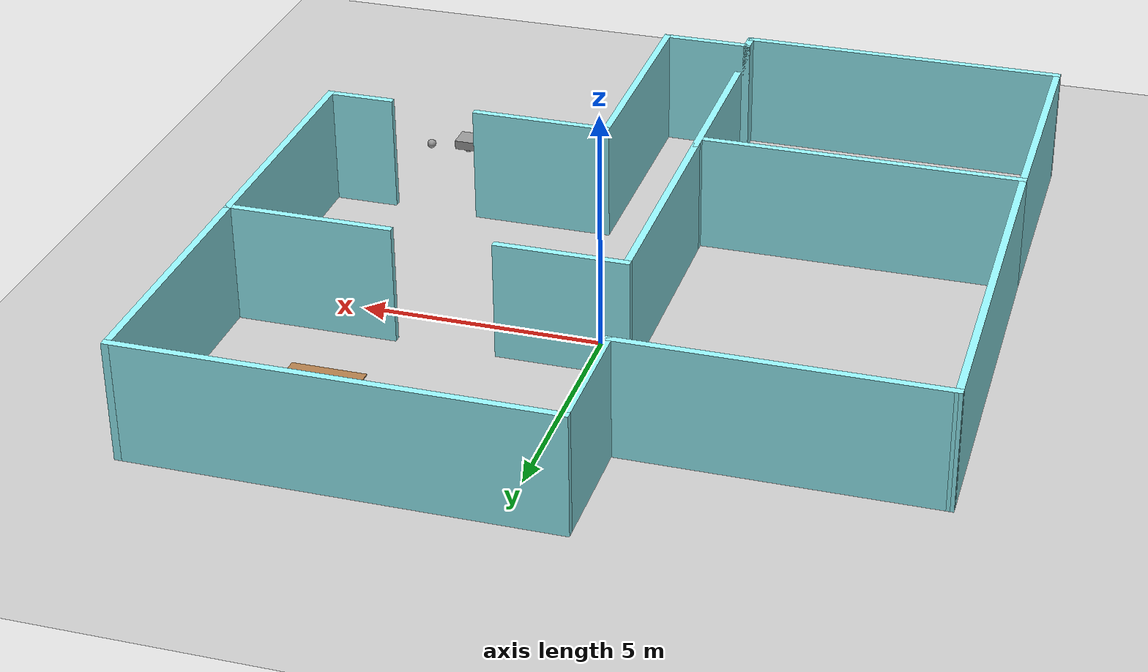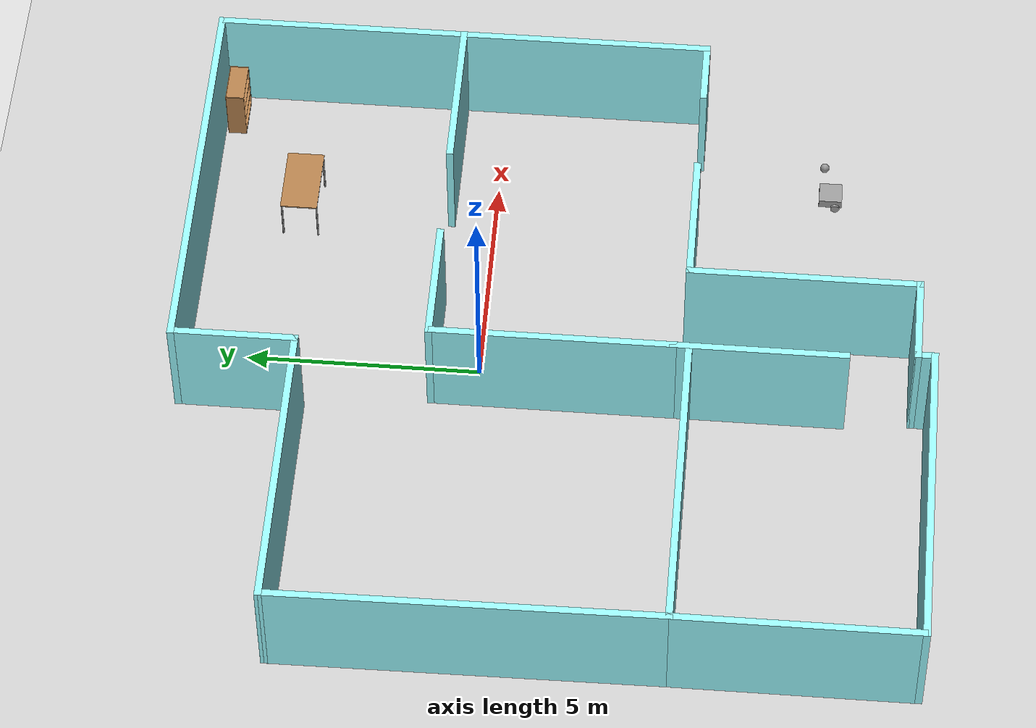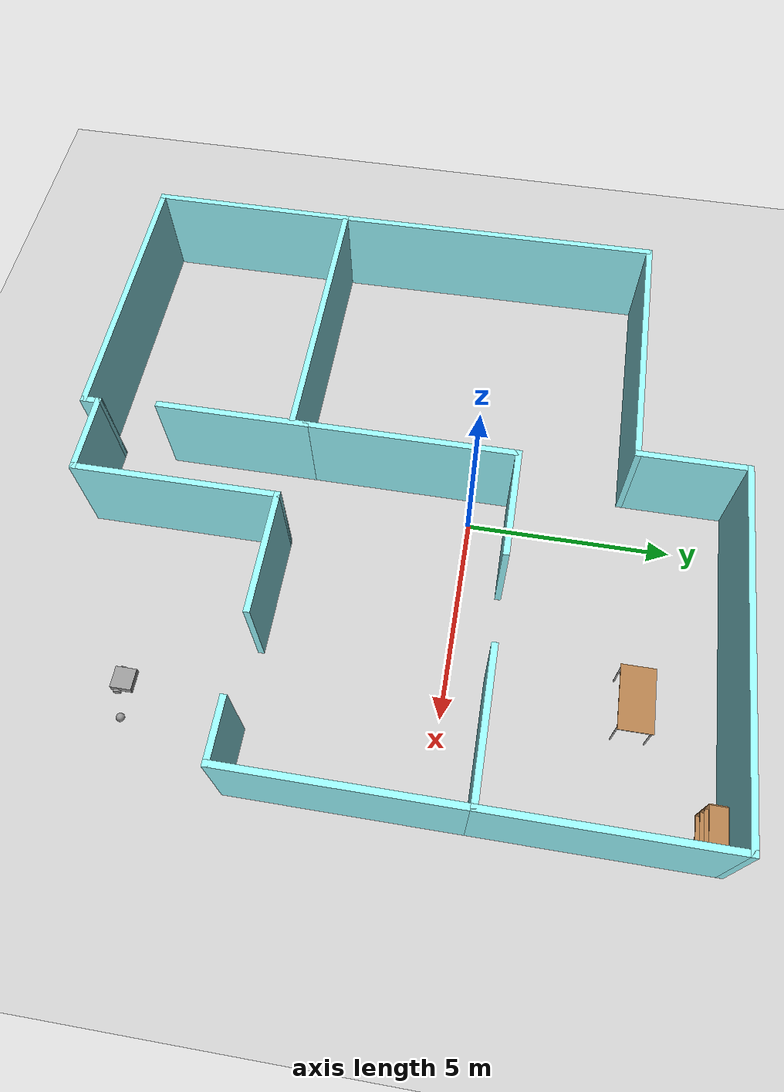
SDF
<sdf version="1.6">
 <world name="default">
  <plugin name="welcome" filename="libwelcome.so"/>
  <light name="sun" type="directional">
   <pose>0 0 10 0 -0 0</pose>
   <diffuse>0.8 0.8 0.8 1</diffuse>
   <specular>0.2 0.2 0.2 1</specular>
   <attenuation>
    <range>1000</range>
    <constant>0.9</constant>
    <linear>0.01</linear>
    <quadratic>0.001</quadratic>
   </attenuation>
   <direction>-0.5 0.1 -0.9</direction>
  </light>
  <model name="ground_plane">
   <static>1</static>
   <link name="link">
    <collision name="collision">
     <geometry><plane><normal>0 0 1</normal><size>100 100</size></plane></geometry>
     <surface>
      <contact><collide_bitmask>65535</collide_bitmask></contact>
      <friction><ode><mu>100</mu><mu2>50</mu2></ode></friction>
     </surface>
    </collision>
    <visual name="visual">
     <cast_shadows>0</cast_shadows>
     <geometry><plane><normal>0 0 1</normal><size>100 100</size></plane></geometry>
     <material>
      <script><uri>file://media/materials/scripts/gazebo.material</uri><name>Gazebo/Grey</name></script>
     </material>
    </visual>
   </link>
  </model>
  <gravity>0 0 -9.8</gravity>
  <magnetic_field>6e-06 2.3e-05 -4.2e-05</magnetic_field>
  <atmosphere type="adiabatic"/>
  <physics name="default_physics" default="0" type="ode">
   <max_step_size>0.001</max_step_size>
   <real_time_factor>1</real_time_factor>
   <real_time_update_rate>1000</real_time_update_rate>
  </physics>
  <scene><ambient>0.4 0.4 0.4 1</ambient><background>0.7 0.7 0.7 1</background><shadows>1</shadows></scene>
  <audio><device>default</device></audio>
  <spherical_coordinates>
   <surface_model>EARTH_WGS84</surface_model>
   <latitude_deg>0</latitude_deg>
   <longitude_deg>0</longitude_deg>
   <elevation>0</elevation>
   <heading_deg>0</heading_deg>
  </spherical_coordinates>
  <model name="firstfloor">
   <pose>-0.12142 -1.62637 0 0 -0 0</pose>
   <link name="Wall_14">
    <collision name="Wall_14_Collision">
     <geometry><box><size>3 0.15 2.5</size></box></geometry>
     <pose>0 0 1.25 0 -0 0</pose>
    </collision>
    <visual name="Wall_14_Visual">
     <pose>0 0 1.25 0 -0 0</pose>
     <geometry><box><size>3 0.15 2.5</size></box></geometry>
     <material>
      <script><uri>file://media/materials/scripts/gazebo.material</uri><name>Gazebo/Grey</name></script>
      <ambient>0.596078 0.968627 0.992157 1</ambient>
     </material>
     <meta><layer>0</layer></meta>
    </visual>
    <pose>2.72262 -2.73897 0 0 -0 0</pose>
   </link>
   <link name="Wall_17">
    <collision name="Wall_17_Collision">
     <geometry><box><size>1.5 0.15 2.5</size></box></geometry>
     <pose>0 0 1.25 0 -0 0</pose>
    </collision>
    <visual name="Wall_17_Visual">
     <pose>0 0 1.25 0 -0 0</pose>
     <geometry><box><size>1.5 0.15 2.5</size></box></geometry>
     <material>
      <script><uri>file://media/materials/scripts/gazebo.material</uri><name>Gazebo/Grey</name></script>
      <ambient>0.596078 0.968627 0.992157 1</ambient>
     </material>
     <meta><layer>0</layer></meta>
    </visual>
    <pose>6.80033 -2.76103 0 0 -0 0</pose>
   </link>
   <link name="Wall_19">
    <collision name="Wall_19_Collision">
     <geometry><box><size>5.5 0.15 2.5</size></box></geometry>
     <pose>0 0 1.25 0 -0 0</pose>
    </collision>
    <visual name="Wall_19_Visual">
     <pose>0 0 1.25 0 -0 0</pose>
     <geometry><box><size>5.5 0.15 2.5</size></box></geometry>
     <material>
      <script><uri>file://media/materials/scripts/gazebo.material</uri><name>Gazebo/Grey</name></script>
      <ambient>0.596078 0.968627 0.992157 1</ambient>
     </material>
     <meta><layer>0</layer></meta>
    </visual>
    <pose>7.47533 -0.086028 0 0 -0 1.5708</pose>
   </link>
   <link name="Wall_20">
    <collision name="Wall_20_Collision">
     <geometry><box><size>3.5 0.15 2.5</size></box></geometry>
     <pose>0 0 1.25 0 -0 0</pose>
    </collision>
    <visual name="Wall_20_Visual">
     <pose>0 0 1.25 0 -0 0</pose>
     <geometry><box><size>3.5 0.15 2.5</size></box></geometry>
     <material>
      <script><uri>file://media/materials/scripts/gazebo.material</uri><name>Gazebo/Grey</name></script>
      <ambient>0.596078 0.968627 0.992157 1</ambient>
     </material>
     <meta><layer>0</layer></meta>
    </visual>
    <pose>5.80033 2.58897 0 0 -0 3.14159</pose>
   </link>
   <link name="Wall_23">
    <collision name="Wall_23_Collision">
     <geometry><box><size>2.75 0.15 2.5</size></box></geometry>
     <pose>0 0 1.25 0 -0 0</pose>
    </collision>
    <visual name="Wall_23_Visual">
     <pose>0 0 1.25 0 -0 0</pose>
     <geometry><box><size>2.75 0.15 2.5</size></box></geometry>
     <material>
      <script><uri>file://media/materials/scripts/gazebo.material</uri><name>Gazebo/Grey</name></script>
      <ambient>0.596078 0.968627 0.992157 1</ambient>
     </material>
     <meta><layer>0</layer></meta>
    </visual>
    <pose>0.6131 2.58957 0 0 -0 3.14159</pose>
   </link>
   <link name="Wall_25">
    <collision name="Wall_25_Collision">
     <geometry><box><size>5.25 0.15 2.5</size></box></geometry>
     <pose>0 0 1.25 0 -0 0</pose>
    </collision>
    <visual name="Wall_25_Visual">
     <pose>0 0 1.25 0 -0 0</pose>
     <geometry><box><size>5.25 0.15 2.5</size></box></geometry>
     <material>
      <script><uri>file://media/materials/scripts/gazebo.material</uri><name>Gazebo/Grey</name></script>
      <ambient>0.596078 0.968627 0.992157 1</ambient>
     </material>
     <meta><layer>0</layer></meta>
    </visual>
    <pose>-0.686899 0.039566 0 0 -0 -1.5708</pose>
   </link>
   <link name="Wall_26">
    <collision name="Wall_26_Collision">
     <geometry><box><size>3.75 0.15 2.5</size></box></geometry>
     <pose>0 0 1.25 0 -0 0</pose>
    </collision>
    <visual name="Wall_26_Visual">
     <pose>0 0 1.25 0 -0 0</pose>
     <geometry><box><size>3.75 0.15 2.5</size></box></geometry>
     <material>
      <script><uri>file://media/materials/scripts/gazebo.material</uri><name>Gazebo/Grey</name></script>
      <ambient>0.596078 0.968627 0.992157 1</ambient>
     </material>
     <meta><layer>0</layer></meta>
    </visual>
    <pose>-0.686899 -4.31043 0 0 -0 -1.5708</pose>
   </link>
   <link name="Wall_28">
    <collision name="Wall_28_Collision">
     <geometry><box><size>5.25 0.15 2.5</size></box></geometry>
     <pose>0 0 1.25 0 -0 0</pose>
    </collision>
    <visual name="Wall_28_Visual">
     <pose>0 0 1.25 0 -0 0</pose>
     <geometry><box><size>5.25 0.15 2.5</size></box></geometry>
     <material>
      <script><uri>file://media/materials/scripts/gazebo.material</uri><name>Gazebo/Grey</name></script>
      <ambient>0.596078 0.968627 0.992157 1</ambient>
     </material>
     <meta><layer>0</layer></meta>
    </visual>
    <pose>-7.40238 -5.38897 0 0 -0 1.5708</pose>
   </link>
   <link name="Wall_3">
    <collision name="Wall_3_Collision">
     <geometry><box><size>7 0.15 2.5</size></box></geometry>
     <pose>0 0 1.25 0 -0 0</pose>
    </collision>
    <visual name="Wall_3_Visual">
     <pose>0 0 1.25 0 -0 0</pose>
     <geometry><box><size>7 0.15 2.5</size></box></geometry>
     <material>
      <script><uri>file://media/materials/scripts/gazebo.material</uri><name>Gazebo/Grey</name></script>
      <ambient>0.596078 0.968627 0.992157 1</ambient>
     </material>
     <meta><layer>0</layer></meta>
    </visual>
    <pose>-3.97738 -7.93897 0 0 -0 0</pose>
   </link>
   <link name="Wall_31">
    <collision name="Wall_31_Collision">
     <geometry><box><size>6.75 0.15 2.5</size></box></geometry>
     <pose>0 0 1.25 0 -0 0</pose>
    </collision>
    <visual name="Wall_31_Visual">
     <pose>0 0 1.25 0 -0 0</pose>
     <geometry><box><size>6.75 0.15 2.5</size></box></geometry>
     <material>
      <script><uri>file://media/materials/scripts/gazebo.material</uri><name>Gazebo/Grey</name></script>
      <ambient>0.596078 0.968627 0.992157 1</ambient>
     </material>
     <meta><layer>0</layer></meta>
    </visual>
    <pose>-4.10238 -2.83897 0 0 -0 0</pose>
   </link>
   <link name="Wall_33">
    <collision name="Wall_33_Collision">
     <geometry><box><size>5.5 0.15 2.5</size></box></geometry>
     <pose>0 0 1.25 0 -0 0</pose>
    </collision>
    <visual name="Wall_33_Visual">
     <pose>0 0 1.25 0 -0 0</pose>
     <geometry><box><size>5.5 0.15 2.5</size></box></geometry>
     <material>
      <script><uri>file://media/materials/scripts/gazebo.material</uri><name>Gazebo/Grey</name></script>
      <ambient>0.596078 0.968627 0.992157 1</ambient>
     </material>
     <meta><layer>0</layer></meta>
    </visual>
    <pose>7.47533 5.26397 0 0 -0 1.5708</pose>
   </link>
   <link name="Wall_34">
    <collision name="Wall_34_Collision">
     <geometry><box><size>8.75 0.15 2.5</size></box></geometry>
     <pose>0 0 1.25 0 -0 0</pose>
    </collision>
    <visual name="Wall_34_Visual">
     <pose>0 0 1.25 0 -0 0</pose>
     <geometry><box><size>8.75 0.15 2.5</size></box></geometry>
     <material>
      <script><uri>file://media/materials/scripts/gazebo.material</uri><name>Gazebo/Grey</name></script>
      <ambient>0.596078 0.968627 0.992157 1</ambient>
     </material>
     <meta><layer>0</layer></meta>
    </visual>
    <pose>3.17533 7.93897 0 0 -0 3.14159</pose>
   </link>
   <link name="Wall_35">
    <collision name="Wall_35_Collision">
     <geometry><box><size>2.75 0.15 2.5</size></box></geometry>
     <pose>0 0 1.25 0 -0 0</pose>
    </collision>
    <visual name="Wall_35_Visual">
     <pose>0 0 1.25 0 -0 0</pose>
     <geometry><box><size>2.75 0.15 2.5</size></box></geometry>
     <material>
      <script><uri>file://media/materials/scripts/gazebo.material</uri><name>Gazebo/Grey</name></script>
      <ambient>0.596078 0.968627 0.992157 1</ambient>
     </material>
     <meta><layer>0</layer></meta>
    </visual>
    <pose>-1.12467 6.63897 0 0 -0 -1.5708</pose>
   </link>
   <link name="Wall_36">
    <collision name="Wall_36_Collision">
     <geometry><box><size>6.5 0.15 2.5</size></box></geometry>
     <pose>0 0 1.25 0 -0 0</pose>
    </collision>
    <visual name="Wall_36_Visual">
     <pose>0 0 1.25 0 -0 0</pose>
     <geometry><box><size>6.5 0.15 2.5</size></box></geometry>
     <material>
      <script><uri>file://media/materials/scripts/gazebo.material</uri><name>Gazebo/Grey</name></script>
      <ambient>0.596078 0.968627 0.992157 1</ambient>
     </material>
     <meta><layer>0</layer></meta>
    </visual>
    <pose>-4.29967 5.33897 0 0 -0 3.14159</pose>
   </link>
   <link name="Wall_37">
    <collision name="Wall_37_Collision">
     <geometry><box><size>8.32826 0.15 2.5</size></box></geometry>
     <pose>0 0 1.25 0 -0 0</pose>
    </collision>
    <visual name="Wall_37_Visual">
     <pose>0 0 1.25 0 -0 0</pose>
     <geometry><box><size>8.32826 0.15 2.5</size></box></geometry>
     <material>
      <script><uri>file://media/materials/scripts/gazebo.material</uri><name>Gazebo/Grey</name></script>
      <ambient>0.596078 0.968627 0.992157 1</ambient>
     </material>
     <meta><layer>0</layer></meta>
    </visual>
    <pose>-7.43852 1.25 0 0 -0 -1.56196</pose>
   </link>
   <link name="Wall_4">
    <collision name="Wall_4_Collision">
     <geometry><box><size>0.5 0.15 2.5</size></box></geometry>
     <pose>0 0 1.25 0 -0 0</pose>
    </collision>
    <visual name="Wall_4_Visual">
     <pose>0 0 1.25 0 -0 0</pose>
     <geometry><box><size>0.5 0.15 2.5</size></box></geometry>
     <material>
      <script><uri>file://media/materials/scripts/gazebo.material</uri><name>Gazebo/Grey</name></script>
      <ambient>0.596078 0.968627 0.992157 1</ambient>
     </material>
     <meta><layer>0</layer></meta>
    </visual>
    <pose>-0.552376 -7.76397 0 0 -0 1.5708</pose>
   </link>
   <link name="Wall_5">
    <collision name="Wall_5_Collision">
     <geometry><box><size>2 0.15 2.5</size></box></geometry>
     <pose>0 0 1.25 0 -0 0</pose>
    </collision>
    <visual name="Wall_5_Visual">
     <pose>0 0 1.25 0 -0 0</pose>
     <geometry><box><size>2 0.15 2.5</size></box></geometry>
     <material>
      <script><uri>file://media/materials/scripts/gazebo.material</uri><name>Gazebo/Grey</name></script>
      <ambient>0.596078 0.968627 0.992157 1</ambient>
     </material>
     <meta><layer>0</layer></meta>
    </visual>
    <pose>0.372624 -7.58897 0 0 -0 0</pose>
   </link>
   <link name="Wall_6">
    <collision name="Wall_6_Collision">
     <geometry><box><size>5 0.15 2.5</size></box></geometry>
     <pose>0 0 1.25 0 -0 0</pose>
    </collision>
    <visual name="Wall_6_Visual">
     <pose>0 0 1.25 0 -0 0</pose>
     <geometry><box><size>5 0.15 2.5</size></box></geometry>
     <material>
      <script><uri>file://media/materials/scripts/gazebo.material</uri><name>Gazebo/Grey</name></script>
      <ambient>0.596078 0.968627 0.992157 1</ambient>
     </material>
     <meta><layer>0</layer></meta>
    </visual>
    <pose>1.29762 -5.16397 0 0 -0 1.5708</pose>
   </link>
   <static>1</static>
  </model>
  <model name="frobot">
   <link name="link_0">
    <inertial>
     <mass>1</mass>
     <inertia>
      <ixx>0.166667</ixx>
      <ixy>0</ixy>
      <ixz>0</ixz>
      <iyy>0.166667</iyy>
      <iyz>0</iyz>
      <izz>0.166667</izz>
     </inertia>
    </inertial>
    <pose>0.005 0.027468 0.075 0 -0 0</pose>
    <visual name="visual">
     <geometry><box><size>0.5 0.5 0.2</size></box></geometry>
     <material>
      <lighting>1</lighting>
      <script><uri>file://media/materials/scripts/gazebo.material</uri><name>Gazebo/Grey</name></script>
      <shader type="vertex"><normal_map>__default__</normal_map></shader>
      <ambient>0.3 0.3 0.3 1</ambient>
      <diffuse>0.7 0.7 0.7 1</diffuse>
      <specular>0.01 0.01 0.01 1</specular>
      <emissive>0 0 0 1</emissive>
     </material>
    </visual>
    <collision name="collision">
     <geometry><box><size>0.5 0.5 0.2</size></box></geometry>
     <surface>
      <friction>
       <ode><mu>1</mu><mu2>1</mu2><fdir1>0 0 0</fdir1><slip1>0</slip1><slip2>0</slip2></ode>
       <torsional>
        <coefficient>1</coefficient>
        <patch_radius>0</patch_radius>
        <surface_radius>0</surface_radius>
        <use_patch_radius>1</use_patch_radius>
        <ode><slip>0</slip></ode>
       </torsional>
      </friction>
      <bounce><restitution_coefficient>0</restitution_coefficient><threshold>1e+06</threshold></bounce>
      <contact>
       <collide_without_contact>0</collide_without_contact>
       <collide_without_contact_bitmask>1</collide_without_contact_bitmask>
       <collide_bitmask>1</collide_bitmask>
       <ode>
        <soft_cfm>0</soft_cfm>
        <soft_erp>0.2</soft_erp>
        <kp>1e+13</kp>
        <kd>1</kd>
        <max_vel>0.01</max_vel>
        <min_depth>0</min_depth>
       </ode>
       <bullet>
        <split_impulse>1</split_impulse>
        <split_impulse_penetration_threshold>-0.01</split_impulse_penetration_threshold>
        <soft_cfm>0</soft_cfm>
        <soft_erp>0.2</soft_erp>
        <kp>1e+13</kp>
        <kd>1</kd>
       </bullet>
      </contact>
     </surface>
    </collision>
   </link>
   <link name="link_1">
    <inertial>
     <mass>1</mass>
     <inertia><ixx>0.145833</ixx><ixy>0</ixy><ixz>0</ixz><iyy>0.145833</iyy><iyz>0</iyz><izz>0.125</izz></inertia>
    </inertial>
    <pose>0.28002 -0.082533 -0.025 4e-06 1.5707 4e-06</pose>
    <visual name="visual">
     <geometry><cylinder><radius>0.1</radius><length>0.05</length></cylinder></geometry>
     <material>
      <lighting>1</lighting>
      <script><uri>file://media/materials/scripts/gazebo.material</uri><name>Gazebo/Grey</name></script>
      <shader type="vertex"><normal_map>__default__</normal_map></shader>
      <ambient>0.3 0.3 0.3 1</ambient>
      <diffuse>0.7 0.7 0.7 1</diffuse>
      <specular>0.01 0.01 0.01 1</specular>
      <emissive>0 0 0 1</emissive>
     </material>
    </visual>
    <collision name="collision">
     <geometry><cylinder><radius>0.1</radius><length>0.05</length></cylinder></geometry>
     <surface>
      <friction>
       <ode><mu>1</mu><mu2>1</mu2><fdir1>0 0 0</fdir1><slip1>0</slip1><slip2>0</slip2></ode>
       <torsional>
        <coefficient>1</coefficient>
        <patch_radius>0</patch_radius>
        <surface_radius>0</surface_radius>
        <use_patch_radius>1</use_patch_radius>
        <ode><slip>0</slip></ode>
       </torsional>
      </friction>
      <bounce><restitution_coefficient>0</restitution_coefficient><threshold>1e+06</threshold></bounce>
      <contact>
       <collide_without_contact>0</collide_without_contact>
       <collide_without_contact_bitmask>1</collide_without_contact_bitmask>
       <collide_bitmask>1</collide_bitmask>
       <ode>
        <soft_cfm>0</soft_cfm>
        <soft_erp>0.2</soft_erp>
        <kp>1e+13</kp>
        <kd>1</kd>
        <max_vel>0.01</max_vel>
        <min_depth>0</min_depth>
       </ode>
       <bullet>
        <split_impulse>1</split_impulse>
        <split_impulse_penetration_threshold>-0.01</split_impulse_penetration_threshold>
        <soft_cfm>0</soft_cfm>
        <soft_erp>0.2</soft_erp>
        <kp>1e+13</kp>
        <kd>1</kd>
       </bullet>
      </contact>
     </surface>
    </collision>
   </link>
   <link name="link_1_clone">
    <inertial>
     <mass>1</mass>
     <inertia><ixx>0.145833</ixx><ixy>0</ixy><ixz>0</ixz><iyy>0.145833</iyy><iyz>0</iyz><izz>0.125</izz></inertia>
    </inertial>
    <pose>-0.27002 -0.082533 -0.025 4e-06 1.5707 4e-06</pose>
    <visual name="visual">
     <geometry><cylinder><radius>0.1</radius><length>0.05</length></cylinder></geometry>
     <material>
      <lighting>1</lighting>
      <script><uri>file://media/materials/scripts/gazebo.material</uri><name>Gazebo/Grey</name></script>
      <shader type="vertex"><normal_map>__default__</normal_map></shader>
      <ambient>0.3 0.3 0.3 1</ambient>
      <diffuse>0.7 0.7 0.7 1</diffuse>
      <specular>0.01 0.01 0.01 1</specular>
      <emissive>0 0 0 1</emissive>
     </material>
    </visual>
    <collision name="collision">
     <geometry><cylinder><radius>0.1</radius><length>0.05</length></cylinder></geometry>
     <surface>
      <friction>
       <ode><mu>1</mu><mu2>1</mu2><fdir1>0 0 0</fdir1><slip1>0</slip1><slip2>0</slip2></ode>
       <torsional>
        <coefficient>1</coefficient>
        <patch_radius>0</patch_radius>
        <surface_radius>0</surface_radius>
        <use_patch_radius>1</use_patch_radius>
        <ode><slip>0</slip></ode>
       </torsional>
      </friction>
      <bounce><restitution_coefficient>0</restitution_coefficient><threshold>1e+06</threshold></bounce>
      <contact>
       <collide_without_contact>0</collide_without_contact>
       <collide_without_contact_bitmask>1</collide_without_contact_bitmask>
       <collide_bitmask>1</collide_bitmask>
       <ode>
        <soft_cfm>0</soft_cfm>
        <soft_erp>0.2</soft_erp>
        <kp>1e+13</kp>
        <kd>1</kd>
        <max_vel>0.01</max_vel>
        <min_depth>0</min_depth>
       </ode>
       <bullet>
        <split_impulse>1</split_impulse>
        <split_impulse_penetration_threshold>-0.01</split_impulse_penetration_threshold>
        <soft_cfm>0</soft_cfm>
        <soft_erp>0.2</soft_erp>
        <kp>1e+13</kp>
        <kd>1</kd>
       </bullet>
      </contact>
     </surface>
    </collision>
   </link>
   <link name="link_2">
    <inertial>
     <mass>1</mass>
     <inertia><ixx>0.1</ixx><ixy>0</ixy><ixz>0</ixz><iyy>0.1</iyy><iyz>0</iyz><izz>0.1</izz></inertia>
    </inertial>
    <pose>-0.015 0.137597 -0.025 0 -0 0</pose>
    <visual name="visual">
     <geometry><sphere><radius>0.1</radius></sphere></geometry>
     <material>
      <lighting>1</lighting>
      <script><uri>file://media/materials/scripts/gazebo.material</uri><name>Gazebo/Grey</name></script>
      <shader type="vertex"><normal_map>__default__</normal_map></shader>
      <ambient>0.3 0.3 0.3 1</ambient>
      <diffuse>0.7 0.7 0.7 1</diffuse>
      <specular>0.01 0.01 0.01 1</specular>
      <emissive>0 0 0 1</emissive>
     </material>
    </visual>
    <collision name="collision">
     <geometry><sphere><radius>0.1</radius></sphere></geometry>
     <surface>
      <friction>
       <ode><mu>1</mu><mu2>1</mu2><fdir1>0 0 0</fdir1><slip1>0</slip1><slip2>0</slip2></ode>
       <torsional>
        <coefficient>1</coefficient>
        <patch_radius>0</patch_radius>
        <surface_radius>0</surface_radius>
        <use_patch_radius>1</use_patch_radius>
        <ode><slip>0</slip></ode>
       </torsional>
      </friction>
      <bounce><restitution_coefficient>0</restitution_coefficient><threshold>1e+06</threshold></bounce>
      <contact>
       <collide_without_contact>0</collide_without_contact>
       <collide_without_contact_bitmask>1</collide_without_contact_bitmask>
       <collide_bitmask>1</collide_bitmask>
       <ode>
        <soft_cfm>0</soft_cfm>
        <soft_erp>0.2</soft_erp>
        <kp>1e+13</kp>
        <kd>1</kd>
        <max_vel>0.01</max_vel>
        <min_depth>0</min_depth>
       </ode>
       <bullet>
        <split_impulse>1</split_impulse>
        <split_impulse_penetration_threshold>-0.01</split_impulse_penetration_threshold>
        <soft_cfm>0</soft_cfm>
        <soft_erp>0.2</soft_erp>
        <kp>1e+13</kp>
        <kd>1</kd>
       </bullet>
      </contact>
     </surface>
    </collision>
   </link>
   <joint name="link_0_JOINT_0" type="revolute">
    <parent>link_0</parent>
    <child>link_1</child>
    <axis>
     <xyz>0 0 1</xyz>
     <use_parent_model_frame>0</use_parent_model_frame>
     <limit>
      <lower>-1.79769e+308</lower>
      <upper>1.79769e+308</upper>
      <effort>-1</effort>
      <velocity>-1</velocity>
     </limit>
     <dynamics>
      <spring_reference>0</spring_reference>
      <spring_stiffness>0</spring_stiffness>
      <damping>0</damping>
      <friction>0</friction>
     </dynamics>
    </axis>
    <physics>
     <ode><limit><cfm>0</cfm><erp>0.2</erp></limit><suspension><cfm>0</cfm><erp>0.2</erp></suspension></ode>
    </physics>
   </joint>
   <joint name="link_0_JOINT_1" type="revolute">
    <parent>link_0</parent>
    <child>link_1_clone</child>
    <axis>
     <xyz>0 0 1</xyz>
     <use_parent_model_frame>0</use_parent_model_frame>
     <limit>
      <lower>-1.79769e+308</lower>
      <upper>1.79769e+308</upper>
      <effort>-1</effort>
      <velocity>-1</velocity>
     </limit>
     <dynamics>
      <spring_reference>0</spring_reference>
      <spring_stiffness>0</spring_stiffness>
      <damping>0</damping>
      <friction>0</friction>
     </dynamics>
    </axis>
    <physics>
     <ode><limit><cfm>0</cfm><erp>0.2</erp></limit><suspension><cfm>0</cfm><erp>0.2</erp></suspension></ode>
    </physics>
   </joint>
   <joint name="link_0_JOINT_2" type="ball">
    <parent>link_0</parent>
    <child>link_2</child>
    <physics>
     <ode><limit><cfm>0</cfm><erp>0.2</erp></limit><suspension><cfm>0</cfm><erp>0.2</erp></suspension></ode>
    </physics>
   </joint>
   <static>0</static>
   <pose>5.2888 -7.32075 0.125001 -4e-06 5e-06 0.003286</pose>
  </model>
  <model name="bookshelf">
   <static>1</static>
   <link name="link">
    <inertial><mass>1</mass></inertial>
    <collision name="back">
     <pose>0 0.005 0.6 0 -0 0</pose>
     <geometry><box><size>0.9 0.01 1.2</size></box></geometry>
    </collision>
    <visual name="visual1">
     <pose>0 0.005 0.6 0 -0 0</pose>
     <geometry><box><size>0.9 0.01 1.2</size></box></geometry>
     <material>
      <script><uri>file://media/materials/scripts/gazebo.material</uri><name>Gazebo/Wood</name></script>
     </material>
    </visual>
    <collision name="left_side">
     <pose>0.45 -0.195 0.6 0 -0 0</pose>
     <geometry><box><size>0.02 0.4 1.2</size></box></geometry>
    </collision>
    <visual name="visual2">
     <pose>0.45 -0.195 0.6 0 -0 0</pose>
     <geometry><box><size>0.02 0.4 1.2</size></box></geometry>
     <material>
      <script><uri>file://media/materials/scripts/gazebo.material</uri><name>Gazebo/Wood</name></script>
     </material>
    </visual>
    <collision name="right_side">
     <pose>-0.45 -0.195 0.6 0 -0 0</pose>
     <geometry><box><size>0.02 0.4 1.2</size></box></geometry>
    </collision>
    <visual name="visual3">
     <pose>-0.45 -0.195 0.6 0 -0 0</pose>
     <geometry><box><size>0.02 0.4 1.2</size></box></geometry>
     <material>
      <script><uri>file://media/materials/scripts/gazebo.material</uri><name>Gazebo/Wood</name></script>
     </material>
    </visual>
    <collision name="bottom">
     <pose>0 -0.195 0.03 0 -0 0</pose>
     <geometry><box><size>0.88 0.4 0.06</size></box></geometry>
    </collision>
    <visual name="visual4">
     <pose>0 -0.195 0.03 0 -0 0</pose>
     <geometry><box><size>0.88 0.4 0.06</size></box></geometry>
     <material>
      <script><uri>file://media/materials/scripts/gazebo.material</uri><name>Gazebo/Wood</name></script>
     </material>
    </visual>
    <collision name="top">
     <pose>0 -0.195 1.19 0 -0 0</pose>
     <geometry><box><size>0.88 0.4 0.02</size></box></geometry>
    </collision>
    <visual name="visual5">
     <pose>0 -0.195 1.19 0 -0 0</pose>
     <geometry><box><size>0.88 0.4 0.02</size></box></geometry>
     <material>
      <script><uri>file://media/materials/scripts/gazebo.material</uri><name>Gazebo/Wood</name></script>
     </material>
    </visual>
    <collision name="low_shelf">
     <pose>0 -0.195 0.43 0 -0 0</pose>
     <geometry><box><size>0.88 0.4 0.02</size></box></geometry>
    </collision>
    <visual name="visual6">
     <pose>0 -0.195 0.43 0 -0 0</pose>
     <geometry><box><size>0.88 0.4 0.02</size></box></geometry>
     <material>
      <script><uri>file://media/materials/scripts/gazebo.material</uri><name>Gazebo/Wood</name></script>
     </material>
    </visual>
    <collision name="high_shelf">
     <pose>0 -0.195 0.8 0 -0 0</pose>
     <geometry><box><size>0.88 0.4 0.02</size></box></geometry>
    </collision>
    <visual name="visual7">
     <pose>0 -0.195 0.8 0 -0 0</pose>
     <geometry><box><size>0.88 0.4 0.02</size></box></geometry>
     <material>
      <script><uri>file://media/materials/scripts/gazebo.material</uri><name>Gazebo/Wood</name></script>
     </material>
    </visual>
   </link>
   <pose>6.68162 6.17388 0 0 -0 0</pose>
  </model>
  <model name="table">
   <static>1</static>
   <link name="link">
    <collision name="surface">
     <pose>0 0 1 0 -0 0</pose>
     <geometry><box><size>1.5 0.8 0.03</size></box></geometry>
     <surface><friction><ode><mu>0.6</mu><mu2>0.6</mu2></ode></friction></surface>
    </collision>
    <visual name="visual1">
     <pose>0 0 1 0 -0 0</pose>
     <geometry><box><size>1.5 0.8 0.03</size></box></geometry>
     <material>
      <script><uri>file://media/materials/scripts/gazebo.material</uri><name>Gazebo/Wood</name></script>
     </material>
    </visual>
    <collision name="front_left_leg">
     <pose>0.68 0.38 0.5 0 -0 0</pose>
     <geometry><cylinder><radius>0.02</radius><length>1</length></cylinder></geometry>
    </collision>
    <visual name="front_left_leg">
     <pose>0.68 0.38 0.5 0 -0 0</pose>
     <geometry><cylinder><radius>0.02</radius><length>1</length></cylinder></geometry>
     <material>
      <script><uri>file://media/materials/scripts/gazebo.material</uri><name>Gazebo/Grey</name></script>
     </material>
    </visual>
    <collision name="front_right_leg">
     <pose>0.68 -0.38 0.5 0 -0 0</pose>
     <geometry><cylinder><radius>0.02</radius><length>1</length></cylinder></geometry>
    </collision>
    <visual name="front_right_leg">
     <pose>0.68 -0.38 0.5 0 -0 0</pose>
     <geometry><cylinder><radius>0.02</radius><length>1</length></cylinder></geometry>
     <material>
      <script><uri>file://media/materials/scripts/gazebo.material</uri><name>Gazebo/Grey</name></script>
     </material>
    </visual>
    <collision name="back_right_leg">
     <pose>-0.68 -0.38 0.5 0 -0 0</pose>
     <geometry><cylinder><radius>0.02</radius><length>1</length></cylinder></geometry>
    </collision>
    <visual name="back_right_leg">
     <pose>-0.68 -0.38 0.5 0 -0 0</pose>
     <geometry><cylinder><radius>0.02</radius><length>1</length></cylinder></geometry>
     <material>
      <script><uri>file://media/materials/scripts/gazebo.material</uri><name>Gazebo/Grey</name></script>
     </material>
    </visual>
    <collision name="back_left_leg">
     <pose>-0.68 0.38 0.5 0 -0 0</pose>
     <geometry><cylinder><radius>0.02</radius><length>1</length></cylinder></geometry>
    </collision>
    <visual name="back_left_leg">
     <pose>-0.68 0.38 0.5 0 -0 0</pose>
     <geometry><cylinder><radius>0.02</radius><length>1</length></cylinder></geometry>
     <material>
      <script><uri>file://media/materials/scripts/gazebo.material</uri><name>Gazebo/Grey</name></script>
     </material>
    </visual>
   </link>
   <pose>4.15573 4.24198 0 0 -0 0</pose>
  </model>
  <model name="ball">
   <link name="link_0">
    <inertial>
     <mass>1</mass>
     <inertia><ixx>0.1</ixx><ixy>0</ixy><ixz>0</ixz><iyy>0.1</iyy><iyz>0</iyz><izz>0.1</izz></inertia>
    </inertial>
    <visual name="visual">
     <geometry><sphere><radius>0.1</radius></sphere></geometry>
     <material>
      <lighting>1</lighting>
      <script><uri>file://media/materials/scripts/gazebo.material</uri><name>Gazebo/Grey</name></script>
      <shader type="vertex"><normal_map>__default__</normal_map></shader>
      <ambient>1 1 1 1</ambient>
      <diffuse>1 1 1 1</diffuse>
      <specular>1 1 1 1</specular>
      <emissive>1 1 1 1</emissive>
     </material>
    </visual>
    <collision name="collision">
     <geometry><sphere><radius>0.1</radius></sphere></geometry>
     <surface>
      <friction>
       <ode><mu>1</mu><mu2>1</mu2><fdir1>0 0 0</fdir1><slip1>0</slip1><slip2>0</slip2></ode>
       <torsional>
        <coefficient>1</coefficient>
        <patch_radius>0</patch_radius>
        <surface_radius>0</surface_radius>
        <use_patch_radius>1</use_patch_radius>
        <ode><slip>0</slip></ode>
       </torsional>
      </friction>
      <bounce><restitution_coefficient>0</restitution_coefficient><threshold>1e+06</threshold></bounce>
      <contact>
       <collide_without_contact>0</collide_without_contact>
       <collide_without_contact_bitmask>1</collide_without_contact_bitmask>
       <collide_bitmask>1</collide_bitmask>
       <ode>
        <soft_cfm>0</soft_cfm>
        <soft_erp>0.2</soft_erp>
        <kp>1e+13</kp>
        <kd>1</kd>
        <max_vel>0.01</max_vel>
        <min_depth>0</min_depth>
       </ode>
       <bullet>
        <split_impulse>1</split_impulse>
        <split_impulse_penetration_threshold>-0.01</split_impulse_penetration_threshold>
        <soft_cfm>0</soft_cfm>
        <soft_erp>0.2</soft_erp>
        <kp>1e+13</kp>
        <kd>1</kd>
       </bullet>
      </contact>
     </surface>
    </collision>
   </link>
   <static>0</static>
   <pose>6.1437 -7.14274 0.1 0 -0 0</pose>
  </model>
 </world>
</sdf>
